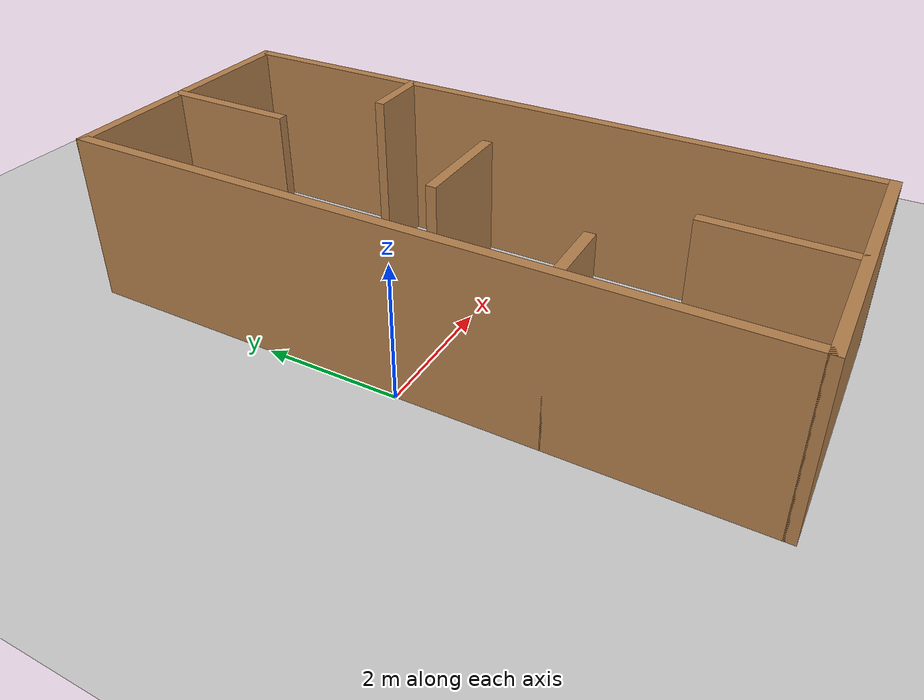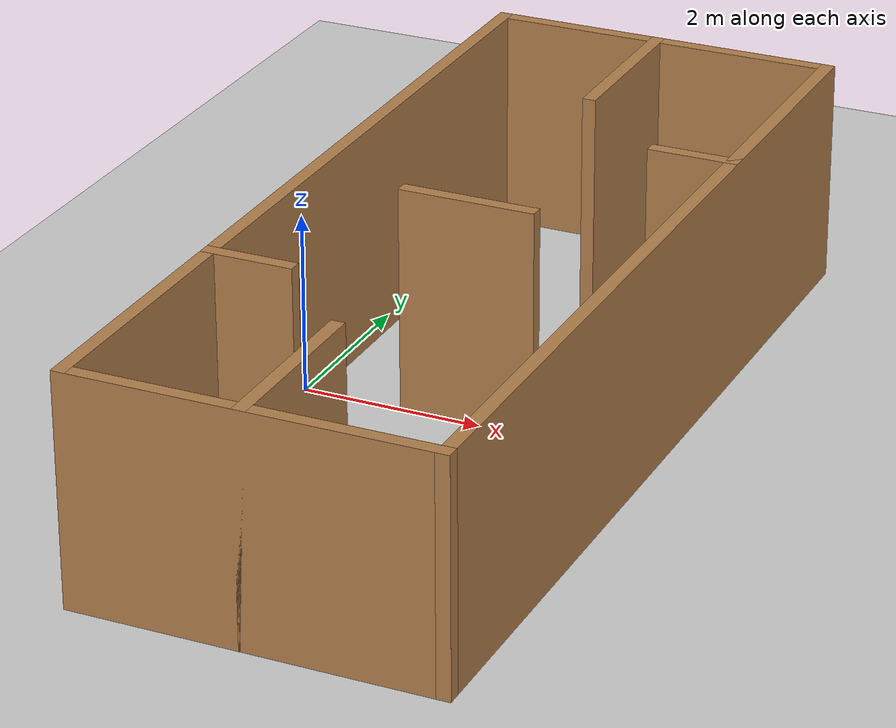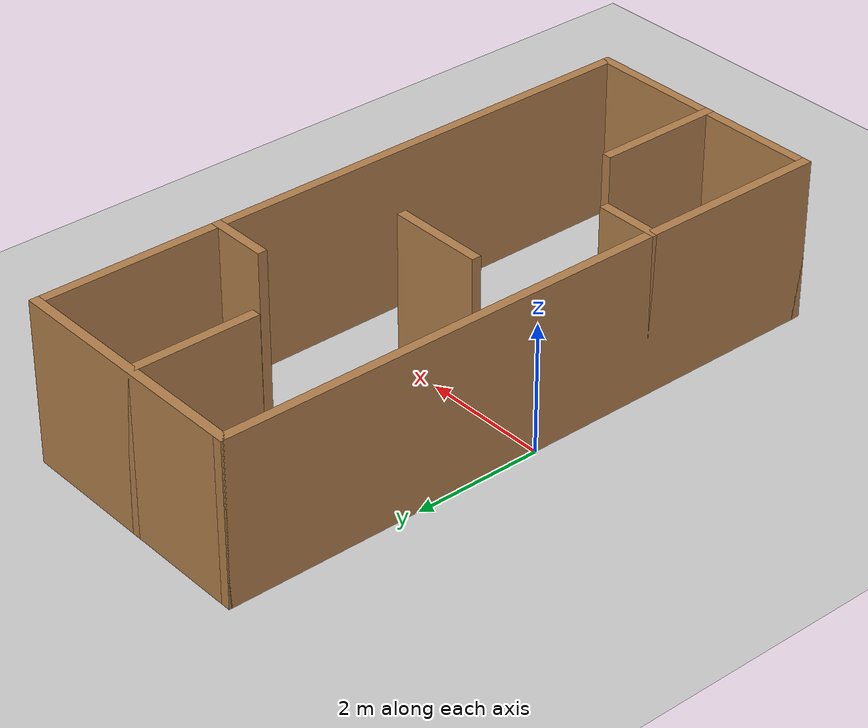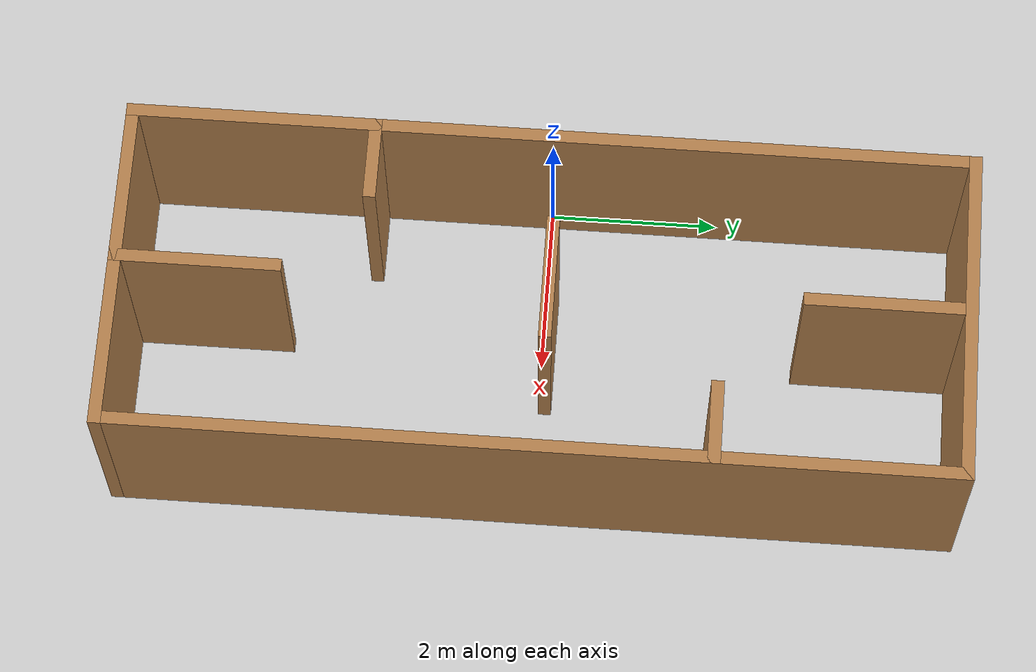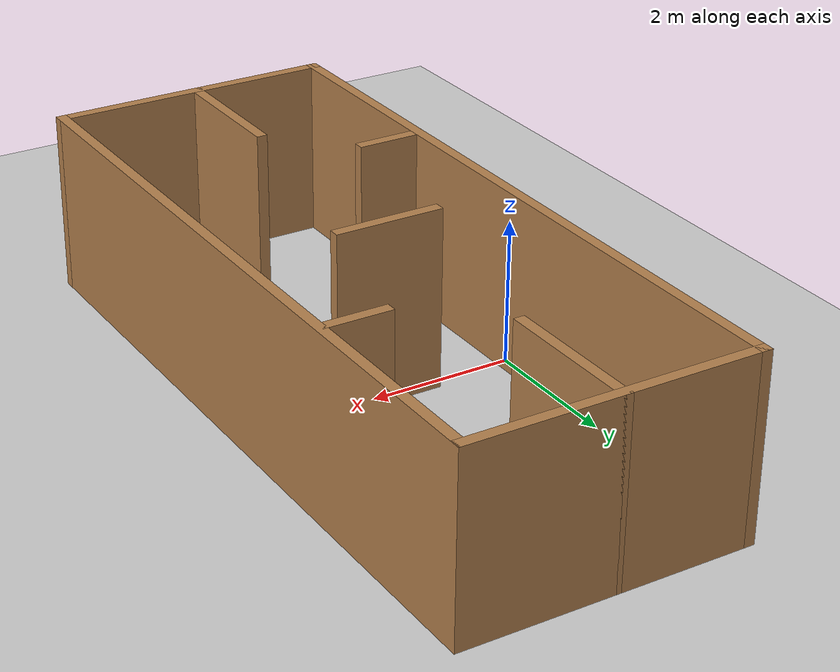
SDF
<sdf version="1.6">
 <world name="default">
  <light name="sun" type="directional">
   <pose>0 0 10 0 -0 0</pose>
   <diffuse>0.8 0.8 0.8 1</diffuse>
   <specular>0.2 0.2 0.2 1</specular>
   <attenuation>
    <range>1000</range>
    <constant>0.9</constant>
    <linear>0.01</linear>
    <quadratic>0.001</quadratic>
   </attenuation>
   <direction>-0.5 0.1 -0.9</direction>
  </light>
  <model name="ground_plane">
   <static>1</static>
   <link name="link">
    <collision name="collision">
     <geometry><plane><normal>0 0 1</normal><size>100 100</size></plane></geometry>
     <surface><friction><ode><mu>100</mu><mu2>50</mu2></ode></friction></surface>
    </collision>
    <visual name="visual">
     <cast_shadows>0</cast_shadows>
     <geometry><plane><normal>0 0 1</normal><size>100 100</size></plane></geometry>
     <material>
      <script><uri>file://media/materials/scripts/gazebo.material</uri><name>Gazebo/Grey</name></script>
     </material>
    </visual>
   </link>
  </model>
  <gravity>0 0 -9.8</gravity>
  <magnetic_field>6e-06 2.3e-05 -4.2e-05</magnetic_field>
  <atmosphere type="adiabatic"/>
  <physics name="default_physics" default="0" type="ode">
   <max_step_size>0.001</max_step_size>
   <real_time_factor>1</real_time_factor>
   <real_time_update_rate>1000</real_time_update_rate>
  </physics>
  <scene><ambient>0.4 0.4 0.4 1</ambient><background>0.7 0.7 0.7 1</background><shadows>1</shadows></scene>
  <audio><device>default</device></audio>
  <spherical_coordinates>
   <surface_model>EARTH_WGS84</surface_model>
   <latitude_deg>0</latitude_deg>
   <longitude_deg>0</longitude_deg>
   <elevation>0</elevation>
   <heading_deg>0</heading_deg>
  </spherical_coordinates>
  <model name="scene_2">
   <pose>2 0 0 0 0 -1.5708</pose>
   <link name="Wall_1">
    <collision name="Wall_1_Collision">
     <geometry><box><size>10 0.15 2.5</size></box></geometry>
     <pose>0 0 1.25 0 -0 0</pose>
    </collision>
    <visual name="Wall_1_Visual">
     <pose>0 0 1.25 0 -0 0</pose>
     <geometry><box><size>10 0.15 2.5</size></box></geometry>
     <material>
      <script><uri>file://media/materials/scripts/gazebo.material</uri><name>Gazebo/Wood</name></script>
      <ambient>1 1 1 1</ambient>
     </material>
     <meta><layer>0</layer></meta>
    </visual>
    <pose>-0 -1.925 0 0 -0 0</pose>
   </link>
   <link name="Wall_107">
    <collision name="Wall_107_Collision">
     <geometry><box><size>1.5 0.15 2.5</size></box></geometry>
     <pose>0 0 1.25 0 -0 0</pose>
    </collision>
    <visual name="Wall_107_Visual">
     <pose>0 0 1.25 0 -0 0</pose>
     <geometry><box><size>1.5 0.15 2.5</size></box></geometry>
     <material>
      <script><uri>file://media/materials/scripts/gazebo.material</uri><name>Gazebo/Wood</name></script>
      <ambient>1 1 1 1</ambient>
     </material>
     <meta><layer>0</layer></meta>
    </visual>
    <pose>-0.075 -0.15 0 0 -0 -1.5708</pose>
   </link>
   <link name="Wall_2">
    <collision name="Wall_2_Collision">
     <geometry><box><size>4 0.15 2.5</size></box></geometry>
     <pose>0 0 1.25 0 -0 0</pose>
    </collision>
    <visual name="Wall_2_Visual">
     <pose>0 0 1.25 0 -0 0</pose>
     <geometry><box><size>4 0.15 2.5</size></box></geometry>
     <material>
      <script><uri>file://media/materials/scripts/gazebo.material</uri><name>Gazebo/Wood</name></script>
      <ambient>1 1 1 1</ambient>
     </material>
     <meta><layer>0</layer></meta>
    </visual>
    <pose>4.925 -0 0 0 -0 1.5708</pose>
   </link>
   <link name="Wall_3">
    <collision name="Wall_3_Collision">
     <geometry><box><size>10 0.15 2.5</size></box></geometry>
     <pose>0 0 1.25 0 -0 0</pose>
    </collision>
    <visual name="Wall_3_Visual">
     <pose>0 0 1.25 0 -0 0</pose>
     <geometry><box><size>10 0.15 2.5</size></box></geometry>
     <material>
      <script><uri>file://media/materials/scripts/gazebo.material</uri><name>Gazebo/Wood</name></script>
      <ambient>1 1 1 1</ambient>
     </material>
     <meta><layer>0</layer></meta>
    </visual>
    <pose>-0 1.925 0 0 -0 3.14159</pose>
   </link>
   <link name="Wall_78">
    <collision name="Wall_78_Collision">
     <geometry><box><size>2 0.15 2.5</size></box></geometry>
     <pose>0 0 1.25 0 -0 0</pose>
    </collision>
    <visual name="Wall_78_Visual">
     <pose>0 0 1.25 0 -0 0</pose>
     <geometry><box><size>2 0.15 2.5</size></box></geometry>
     <material>
      <script><uri>file://media/materials/scripts/gazebo.material</uri><name>Gazebo/Wood</name></script>
      <ambient>1 1 1 1</ambient>
     </material>
     <meta><layer>0</layer></meta>
    </visual>
    <pose>-4 -0.075 0 0 -0 0</pose>
   </link>
   <link name="Wall_80">
    <collision name="Wall_80_Collision">
     <geometry><box><size>4 0.15 2.5</size></box></geometry>
     <pose>0 0 1.25 0 -0 0</pose>
    </collision>
    <visual name="Wall_80_Visual">
     <pose>0 0 1.25 0 -0 0</pose>
     <geometry><box><size>4 0.15 2.5</size></box></geometry>
     <material>
      <script><uri>file://media/materials/scripts/gazebo.material</uri><name>Gazebo/Wood</name></script>
      <ambient>1 1 1 1</ambient>
     </material>
     <meta><layer>0</layer></meta>
    </visual>
    <pose>-4.925 -0 0 0 -0 1.5708</pose>
   </link>
   <link name="Wall_83">
    <collision name="Wall_83_Collision">
     <geometry><box><size>1 0.15 2.5</size></box></geometry>
     <pose>0 0 1.25 0 -0 0</pose>
    </collision>
    <visual name="Wall_83_Visual">
     <pose>0 0 1.25 0 -0 0</pose>
     <geometry><box><size>1 0.15 2.5</size></box></geometry>
     <material>
      <script><uri>file://media/materials/scripts/gazebo.material</uri><name>Gazebo/Wood</name></script>
      <ambient>1 1 1 1</ambient>
     </material>
     <meta><layer>0</layer></meta>
    </visual>
    <pose>-2.075 1.5 0 0 -0 -1.5708</pose>
   </link>
   <link name="Wall_86">
    <collision name="Wall_86_Collision">
     <geometry><box><size>1 0.15 2.5</size></box></geometry>
     <pose>0 0 1.25 0 -0 0</pose>
    </collision>
    <visual name="Wall_86_Visual">
     <pose>0 0 1.25 0 -0 0</pose>
     <geometry><box><size>1 0.15 2.5</size></box></geometry>
     <material>
      <script><uri>file://media/materials/scripts/gazebo.material</uri><name>Gazebo/Wood</name></script>
      <ambient>1 1 1 1</ambient>
     </material>
     <meta><layer>0</layer></meta>
    </visual>
    <pose>2.075 -1.5 0 0 -0 1.5708</pose>
   </link>
   <link name="Wall_89">
    <collision name="Wall_89_Collision">
     <geometry><box><size>2 0.15 2.5</size></box></geometry>
     <pose>0 0 1.25 0 -0 0</pose>
    </collision>
    <visual name="Wall_89_Visual">
     <pose>0 0 1.25 0 -0 0</pose>
     <geometry><box><size>2 0.15 2.5</size></box></geometry>
     <material>
      <script><uri>file://media/materials/scripts/gazebo.material</uri><name>Gazebo/Wood</name></script>
      <ambient>1 1 1 1</ambient>
     </material>
     <meta><layer>0</layer></meta>
    </visual>
    <pose>4 -0.075 0 0 -0 3.14159</pose>
   </link>
   <static>1</static>
  </model>
 </world>
</sdf>
